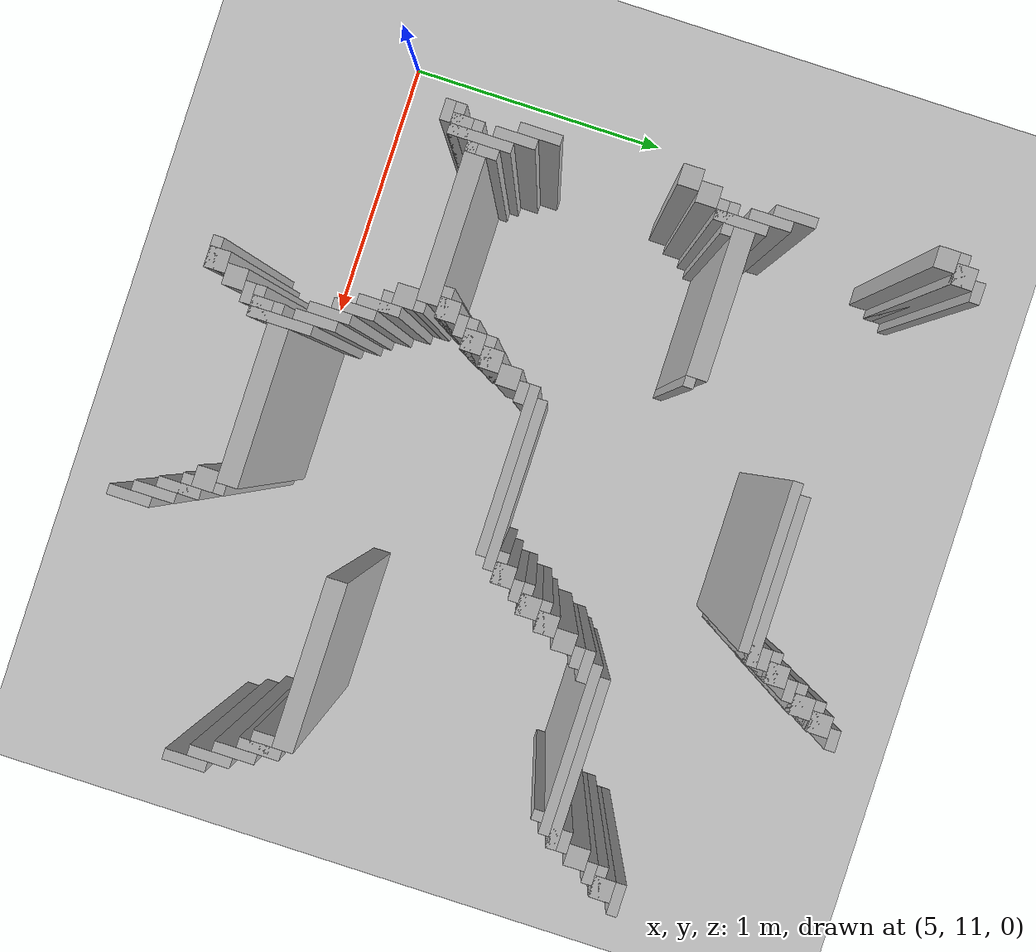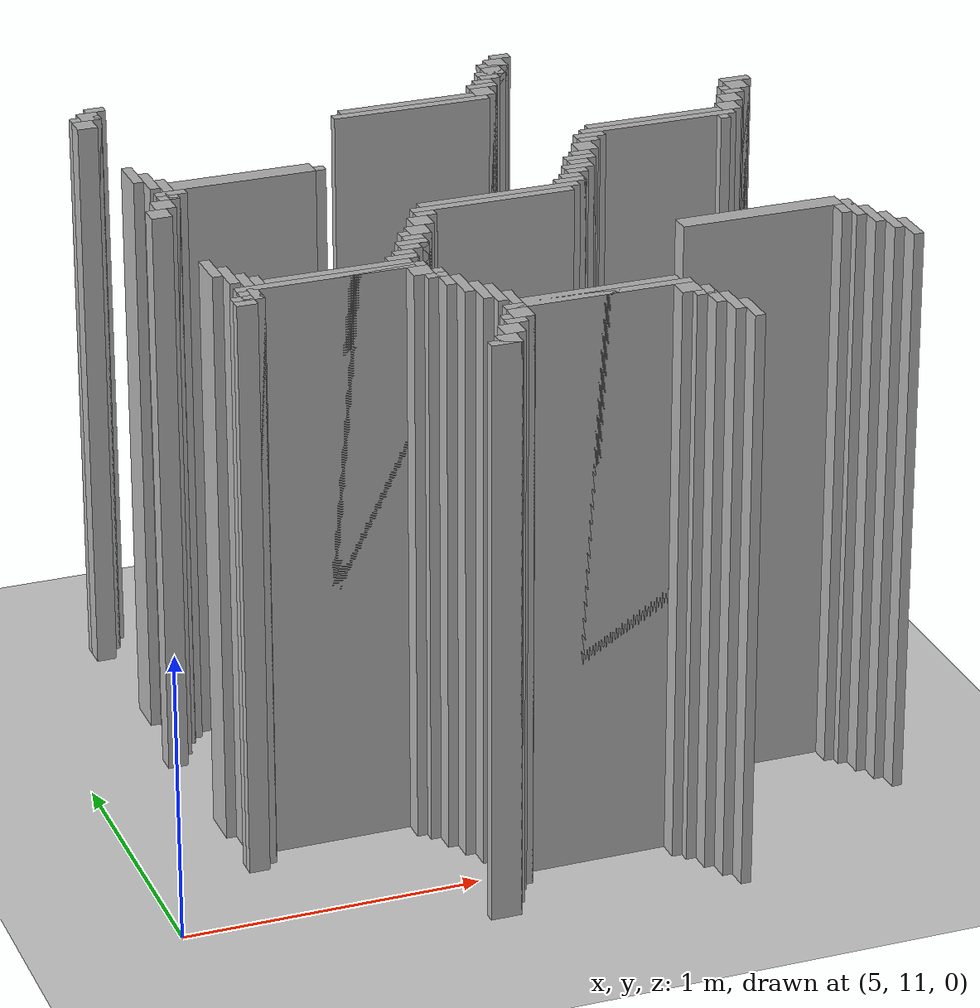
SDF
<sdf version="1.6">
 <world name="slam_world">
  <model name="ground_plane">
   <static>true</static>
   <link name="link">
    <collision name="collision">
     <geometry><plane><normal>0 0 1</normal><size>100 100</size></plane></geometry>
    </collision>
    <visual name="visual">
     <geometry><plane><normal>0 0 1</normal><size>100 100</size></plane></geometry>
     <material>
      <ambient>0.8 0.8 0.8 1</ambient>
      <diffuse>0.8 0.8 0.8 1</diffuse>
      <specular>0.8 0.8 0.8 1</specular>
     </material>
    </visual>
   </link>
  </model>
  <model name="wall_1390">
   <static>true</static>
   <pose>5.3944315545243615 13.06844547563805 1.0 0 0 0</pose>
   <link name="link">
    <collision name="collision">
     <geometry><box><size>0.06960556844547564 0.03480278422273782 2.0</size></box></geometry>
    </collision>
    <visual name="visual">
     <geometry><box><size>0.06960556844547564 0.03480278422273782 2.0</size></box></geometry>
     <material><ambient>0.5 0.5 0.5 1</ambient><diffuse>0.7 0.7 0.7 1</diffuse></material>
    </visual>
   </link>
  </model>
  <model name="wall_1391">
   <static>true</static>
   <pose>6.85614849187935 13.06844547563805 1.0 0 0 0</pose>
   <link name="link">
    <collision name="collision">
     <geometry><box><size>0.06960556844547564 0.03480278422273782 2.0</size></box></geometry>
    </collision>
    <visual name="visual">
     <geometry><box><size>0.06960556844547564 0.03480278422273782 2.0</size></box></geometry>
     <material><ambient>0.5 0.5 0.5 1</ambient><diffuse>0.7 0.7 0.7 1</diffuse></material>
    </visual>
   </link>
  </model>
  <model name="wall_1403">
   <static>true</static>
   <pose>5.359628770301624 13.016241299303944 1.0 0 0 0</pose>
   <link name="link">
    <collision name="collision">
     <geometry><box><size>0.06960556844547564 0.06960556844547564 2.0</size></box></geometry>
    </collision>
    <visual name="visual">
     <geometry><box><size>0.06960556844547564 0.06960556844547564 2.0</size></box></geometry>
     <material><ambient>0.5 0.5 0.5 1</ambient><diffuse>0.7 0.7 0.7 1</diffuse></material>
    </visual>
   </link>
  </model>
  <model name="wall_1404">
   <static>true</static>
   <pose>6.821345707656612 13.016241299303944 1.0 0 0 0</pose>
   <link name="link">
    <collision name="collision">
     <geometry><box><size>0.06960556844547564 0.06960556844547564 2.0</size></box></geometry>
    </collision>
    <visual name="visual">
     <geometry><box><size>0.06960556844547564 0.06960556844547564 2.0</size></box></geometry>
     <material><ambient>0.5 0.5 0.5 1</ambient><diffuse>0.7 0.7 0.7 1</diffuse></material>
    </visual>
   </link>
  </model>
  <model name="wall_1418">
   <static>true</static>
   <pose>5.342227378190255 12.998839907192576 1.0 0 0 0</pose>
   <link name="link">
    <collision name="collision">
     <geometry><box><size>0.10440835266821345 0.03480278422273782 2.0</size></box></geometry>
    </collision>
    <visual name="visual">
     <geometry><box><size>0.10440835266821345 0.03480278422273782 2.0</size></box></geometry>
     <material><ambient>0.5 0.5 0.5 1</ambient><diffuse>0.7 0.7 0.7 1</diffuse></material>
    </visual>
   </link>
  </model>
  <model name="wall_1419">
   <static>true</static>
   <pose>6.803944315545244 12.998839907192576 1.0 0 0 0</pose>
   <link name="link">
    <collision name="collision">
     <geometry><box><size>0.10440835266821345 0.03480278422273782 2.0</size></box></geometry>
    </collision>
    <visual name="visual">
     <geometry><box><size>0.10440835266821345 0.03480278422273782 2.0</size></box></geometry>
     <material><ambient>0.5 0.5 0.5 1</ambient><diffuse>0.7 0.7 0.7 1</diffuse></material>
    </visual>
   </link>
  </model>
  <model name="wall_1433">
   <static>true</static>
   <pose>5.324825986078886 12.946635730858468 1.0 0 0 0</pose>
   <link name="link">
    <collision name="collision">
     <geometry><box><size>0.06960556844547564 0.06960556844547564 2.0</size></box></geometry>
    </collision>
    <visual name="visual">
     <geometry><box><size>0.06960556844547564 0.06960556844547564 2.0</size></box></geometry>
     <material><ambient>0.5 0.5 0.5 1</ambient><diffuse>0.7 0.7 0.7 1</diffuse></material>
    </visual>
   </link>
  </model>
  <model name="wall_1434">
   <static>true</static>
   <pose>6.786542923433874 12.946635730858468 1.0 0 0 0</pose>
   <link name="link">
    <collision name="collision">
     <geometry><box><size>0.06960556844547564 0.06960556844547564 2.0</size></box></geometry>
    </collision>
    <visual name="visual">
     <geometry><box><size>0.06960556844547564 0.06960556844547564 2.0</size></box></geometry>
     <material><ambient>0.5 0.5 0.5 1</ambient><diffuse>0.7 0.7 0.7 1</diffuse></material>
    </visual>
   </link>
  </model>
  <model name="wall_1449">
   <static>true</static>
   <pose>6.769141531322505 12.929234338747099 1.0 0 0 0</pose>
   <link name="link">
    <collision name="collision">
     <geometry><box><size>0.10440835266821345 0.03480278422273782 2.0</size></box></geometry>
    </collision>
    <visual name="visual">
     <geometry><box><size>0.10440835266821345 0.03480278422273782 2.0</size></box></geometry>
     <material><ambient>0.5 0.5 0.5 1</ambient><diffuse>0.7 0.7 0.7 1</diffuse></material>
    </visual>
   </link>
  </model>
  <model name="wall_1462">
   <static>true</static>
   <pose>6.751740139211137 12.894431554524362 1.0 0 0 0</pose>
   <link name="link">
    <collision name="collision">
     <geometry><box><size>0.06960556844547564 0.03480278422273782 2.0</size></box></geometry>
    </collision>
    <visual name="visual">
     <geometry><box><size>0.06960556844547564 0.03480278422273782 2.0</size></box></geometry>
     <material><ambient>0.5 0.5 0.5 1</ambient><diffuse>0.7 0.7 0.7 1</diffuse></material>
    </visual>
   </link>
  </model>
  <model name="wall_1472">
   <static>true</static>
   <pose>6.716937354988398 12.842227378190255 1.0 0 0 0</pose>
   <link name="link">
    <collision name="collision">
     <geometry><box><size>0.06960556844547564 0.06960556844547564 2.0</size></box></geometry>
    </collision>
    <visual name="visual">
     <geometry><box><size>0.06960556844547564 0.06960556844547564 2.0</size></box></geometry>
     <material><ambient>0.5 0.5 0.5 1</ambient><diffuse>0.7 0.7 0.7 1</diffuse></material>
    </visual>
   </link>
  </model>
  <model name="wall_1487">
   <static>true</static>
   <pose>6.69953596287703 12.824825986078885 1.0 0 0 0</pose>
   <link name="link">
    <collision name="collision">
     <geometry><box><size>0.10440835266821345 0.03480278422273782 2.0</size></box></geometry>
    </collision>
    <visual name="visual">
     <geometry><box><size>0.10440835266821345 0.03480278422273782 2.0</size></box></geometry>
     <material><ambient>0.5 0.5 0.5 1</ambient><diffuse>0.7 0.7 0.7 1</diffuse></material>
    </visual>
   </link>
  </model>
  <model name="wall_1500">
   <static>true</static>
   <pose>6.682134570765661 12.772621809744779 1.0 0 0 0</pose>
   <link name="link">
    <collision name="collision">
     <geometry><box><size>0.06960556844547564 0.06960556844547564 2.0</size></box></geometry>
    </collision>
    <visual name="visual">
     <geometry><box><size>0.06960556844547564 0.06960556844547564 2.0</size></box></geometry>
     <material><ambient>0.5 0.5 0.5 1</ambient><diffuse>0.7 0.7 0.7 1</diffuse></material>
    </visual>
   </link>
  </model>
  <model name="wall_1511">
   <static>true</static>
   <pose>6.438515081206496 12.75522041763341 1.0 0 0 0</pose>
   <link name="link">
    <collision name="collision">
     <geometry><box><size>0.5568445475638051 0.03480278422273782 2.0</size></box></geometry>
    </collision>
    <visual name="visual">
     <geometry><box><size>0.5568445475638051 0.03480278422273782 2.0</size></box></geometry>
     <material><ambient>0.5 0.5 0.5 1</ambient><diffuse>0.7 0.7 0.7 1</diffuse></material>
    </visual>
   </link>
  </model>
  <model name="wall_1524">
   <static>true</static>
   <pose>6.403712296983758 12.720417633410673 1.0 0 0 0</pose>
   <link name="link">
    <collision name="collision">
     <geometry><box><size>0.5568445475638051 0.03480278422273782 2.0</size></box></geometry>
    </collision>
    <visual name="visual">
     <geometry><box><size>0.5568445475638051 0.03480278422273782 2.0</size></box></geometry>
     <material><ambient>0.5 0.5 0.5 1</ambient><diffuse>0.7 0.7 0.7 1</diffuse></material>
    </visual>
   </link>
  </model>
  <model name="wall_1574">
   <static>true</static>
   <pose>7.534802784222737 12.581206496519721 1.0 0 0 0</pose>
   <link name="link">
    <collision name="collision">
     <geometry><box><size>0.10440835266821345 0.03480278422273782 2.0</size></box></geometry>
    </collision>
    <visual name="visual">
     <geometry><box><size>0.10440835266821345 0.03480278422273782 2.0</size></box></geometry>
     <material><ambient>0.5 0.5 0.5 1</ambient><diffuse>0.7 0.7 0.7 1</diffuse></material>
    </visual>
   </link>
  </model>
  <model name="wall_1586">
   <static>true</static>
   <pose>7.517401392111369 12.529002320185615 1.0 0 0 0</pose>
   <link name="link">
    <collision name="collision">
     <geometry><box><size>0.06960556844547564 0.06960556844547564 2.0</size></box></geometry>
    </collision>
    <visual name="visual">
     <geometry><box><size>0.06960556844547564 0.06960556844547564 2.0</size></box></geometry>
     <material><ambient>0.5 0.5 0.5 1</ambient><diffuse>0.7 0.7 0.7 1</diffuse></material>
    </visual>
   </link>
  </model>
  <model name="wall_1597">
   <static>true</static>
   <pose>5.342227378190255 12.459396751740138 1.0 0 0 0</pose>
   <link name="link">
    <collision name="collision">
     <geometry><box><size>0.03480278422273782 0.13921113689095127 2.0</size></box></geometry>
    </collision>
    <visual name="visual">
     <geometry><box><size>0.03480278422273782 0.13921113689095127 2.0</size></box></geometry>
     <material><ambient>0.5 0.5 0.5 1</ambient><diffuse>0.7 0.7 0.7 1</diffuse></material>
    </visual>
   </link>
  </model>
  <model name="wall_1598">
   <static>true</static>
   <pose>7.5 12.511600928074245 1.0 0 0 0</pose>
   <link name="link">
    <collision name="collision">
     <geometry><box><size>0.10440835266821345 0.03480278422273782 2.0</size></box></geometry>
    </collision>
    <visual name="visual">
     <geometry><box><size>0.10440835266821345 0.03480278422273782 2.0</size></box></geometry>
     <material><ambient>0.5 0.5 0.5 1</ambient><diffuse>0.7 0.7 0.7 1</diffuse></material>
    </visual>
   </link>
  </model>
  <model name="wall_1608">
   <static>true</static>
   <pose>7.48259860788863 12.476798143851507 1.0 0 0 0</pose>
   <link name="link">
    <collision name="collision">
     <geometry><box><size>0.06960556844547564 0.03480278422273782 2.0</size></box></geometry>
    </collision>
    <visual name="visual">
     <geometry><box><size>0.06960556844547564 0.03480278422273782 2.0</size></box></geometry>
     <material><ambient>0.5 0.5 0.5 1</ambient><diffuse>0.7 0.7 0.7 1</diffuse></material>
    </visual>
   </link>
  </model>
  <model name="wall_1617">
   <static>true</static>
   <pose>5.377030162412993 12.389791183294664 1.0 0 0 0</pose>
   <link name="link">
    <collision name="collision">
     <geometry><box><size>0.03480278422273782 0.13921113689095127 2.0</size></box></geometry>
    </collision>
    <visual name="visual">
     <geometry><box><size>0.03480278422273782 0.13921113689095127 2.0</size></box></geometry>
     <material><ambient>0.5 0.5 0.5 1</ambient><diffuse>0.7 0.7 0.7 1</diffuse></material>
    </visual>
   </link>
  </model>
  <model name="wall_1618">
   <static>true</static>
   <pose>7.447795823665893 12.424593967517401 1.0 0 0 0</pose>
   <link name="link">
    <collision name="collision">
     <geometry><box><size>0.06960556844547564 0.06960556844547564 2.0</size></box></geometry>
    </collision>
    <visual name="visual">
     <geometry><box><size>0.06960556844547564 0.06960556844547564 2.0</size></box></geometry>
     <material><ambient>0.5 0.5 0.5 1</ambient><diffuse>0.7 0.7 0.7 1</diffuse></material>
    </visual>
   </link>
  </model>
  <model name="wall_1630">
   <static>true</static>
   <pose>5.41183294663573 12.302784222737818 1.0 0 0 0</pose>
   <link name="link">
    <collision name="collision">
     <geometry><box><size>0.03480278422273782 0.17401392111368907 2.0</size></box></geometry>
    </collision>
    <visual name="visual">
     <geometry><box><size>0.03480278422273782 0.17401392111368907 2.0</size></box></geometry>
     <material><ambient>0.5 0.5 0.5 1</ambient><diffuse>0.7 0.7 0.7 1</diffuse></material>
    </visual>
   </link>
  </model>
  <model name="wall_1631">
   <static>true</static>
   <pose>7.412993039443156 12.354988399071924 1.0 0 0 0</pose>
   <link name="link">
    <collision name="collision">
     <geometry><box><size>0.06960556844547564 0.06960556844547564 2.0</size></box></geometry>
    </collision>
    <visual name="visual">
     <geometry><box><size>0.06960556844547564 0.06960556844547564 2.0</size></box></geometry>
     <material><ambient>0.5 0.5 0.5 1</ambient><diffuse>0.7 0.7 0.7 1</diffuse></material>
    </visual>
   </link>
  </model>
  <model name="wall_1643">
   <static>true</static>
   <pose>5.672853828306264 12.320185614849187 1.0 0 0 0</pose>
   <link name="link">
    <collision name="collision">
     <geometry><box><size>0.4872389791183295 0.06960556844547564 2.0</size></box></geometry>
    </collision>
    <visual name="visual">
     <geometry><box><size>0.4872389791183295 0.06960556844547564 2.0</size></box></geometry>
     <material><ambient>0.5 0.5 0.5 1</ambient><diffuse>0.7 0.7 0.7 1</diffuse></material>
    </visual>
   </link>
  </model>
  <model name="wall_1644">
   <static>true</static>
   <pose>7.16937354988399 12.337587006960556 1.0 0 0 0</pose>
   <link name="link">
    <collision name="collision">
     <geometry><box><size>0.5568445475638051 0.03480278422273782 2.0</size></box></geometry>
    </collision>
    <visual name="visual">
     <geometry><box><size>0.5568445475638051 0.03480278422273782 2.0</size></box></geometry>
     <material><ambient>0.5 0.5 0.5 1</ambient><diffuse>0.7 0.7 0.7 1</diffuse></material>
    </visual>
   </link>
  </model>
  <model name="wall_1654">
   <static>true</static>
   <pose>5.933874709976798 12.302784222737818 1.0 0 0 0</pose>
   <link name="link">
    <collision name="collision">
     <geometry><box><size>0.03480278422273782 0.03480278422273782 2.0</size></box></geometry>
    </collision>
    <visual name="visual">
     <geometry><box><size>0.03480278422273782 0.03480278422273782 2.0</size></box></geometry>
     <material><ambient>0.5 0.5 0.5 1</ambient><diffuse>0.7 0.7 0.7 1</diffuse></material>
    </visual>
   </link>
  </model>
  <model name="wall_1655">
   <static>true</static>
   <pose>7.134570765661253 12.302784222737818 1.0 0 0 0</pose>
   <link name="link">
    <collision name="collision">
     <geometry><box><size>0.5568445475638051 0.03480278422273782 2.0</size></box></geometry>
    </collision>
    <visual name="visual">
     <geometry><box><size>0.5568445475638051 0.03480278422273782 2.0</size></box></geometry>
     <material><ambient>0.5 0.5 0.5 1</ambient><diffuse>0.7 0.7 0.7 1</diffuse></material>
    </visual>
   </link>
  </model>
  <model name="wall_1668">
   <static>true</static>
   <pose>5.41183294663573 12.267981438515081 1.0 0 0 0</pose>
   <link name="link">
    <collision name="collision">
     <geometry><box><size>0.10440835266821345 0.03480278422273782 2.0</size></box></geometry>
    </collision>
    <visual name="visual">
     <geometry><box><size>0.10440835266821345 0.03480278422273782 2.0</size></box></geometry>
     <material><ambient>0.5 0.5 0.5 1</ambient><diffuse>0.7 0.7 0.7 1</diffuse></material>
    </visual>
   </link>
  </model>
  <model name="wall_1669">
   <static>true</static>
   <pose>6.8735498839907185 12.267981438515081 1.0 0 0 0</pose>
   <link name="link">
    <collision name="collision">
     <geometry><box><size>0.10440835266821345 0.03480278422273782 2.0</size></box></geometry>
    </collision>
    <visual name="visual">
     <geometry><box><size>0.10440835266821345 0.03480278422273782 2.0</size></box></geometry>
     <material><ambient>0.5 0.5 0.5 1</ambient><diffuse>0.7 0.7 0.7 1</diffuse></material>
    </visual>
   </link>
  </model>
  <model name="wall_1670">
   <static>true</static>
   <pose>7.360788863109049 12.267981438515081 1.0 0 0 0</pose>
   <link name="link">
    <collision name="collision">
     <geometry><box><size>0.03480278422273782 0.03480278422273782 2.0</size></box></geometry>
    </collision>
    <visual name="visual">
     <geometry><box><size>0.03480278422273782 0.03480278422273782 2.0</size></box></geometry>
     <material><ambient>0.5 0.5 0.5 1</ambient><diffuse>0.7 0.7 0.7 1</diffuse></material>
    </visual>
   </link>
  </model>
  <model name="wall_1685">
   <static>true</static>
   <pose>5.3944315545243615 12.233178654292344 1.0 0 0 0</pose>
   <link name="link">
    <collision name="collision">
     <geometry><box><size>0.06960556844547564 0.03480278422273782 2.0</size></box></geometry>
    </collision>
    <visual name="visual">
     <geometry><box><size>0.06960556844547564 0.03480278422273782 2.0</size></box></geometry>
     <material><ambient>0.5 0.5 0.5 1</ambient><diffuse>0.7 0.7 0.7 1</diffuse></material>
    </visual>
   </link>
  </model>
  <model name="wall_1686">
   <static>true</static>
   <pose>6.85614849187935 12.233178654292344 1.0 0 0 0</pose>
   <link name="link">
    <collision name="collision">
     <geometry><box><size>0.06960556844547564 0.03480278422273782 2.0</size></box></geometry>
    </collision>
    <visual name="visual">
     <geometry><box><size>0.06960556844547564 0.03480278422273782 2.0</size></box></geometry>
     <material><ambient>0.5 0.5 0.5 1</ambient><diffuse>0.7 0.7 0.7 1</diffuse></material>
    </visual>
   </link>
  </model>
  <model name="wall_1699">
   <static>true</static>
   <pose>5.359628770301624 12.180974477958236 1.0 0 0 0</pose>
   <link name="link">
    <collision name="collision">
     <geometry><box><size>0.06960556844547564 0.06960556844547564 2.0</size></box></geometry>
    </collision>
    <visual name="visual">
     <geometry><box><size>0.06960556844547564 0.06960556844547564 2.0</size></box></geometry>
     <material><ambient>0.5 0.5 0.5 1</ambient><diffuse>0.7 0.7 0.7 1</diffuse></material>
    </visual>
   </link>
  </model>
  <model name="wall_1700">
   <static>true</static>
   <pose>6.821345707656612 12.180974477958236 1.0 0 0 0</pose>
   <link name="link">
    <collision name="collision">
     <geometry><box><size>0.06960556844547564 0.06960556844547564 2.0</size></box></geometry>
    </collision>
    <visual name="visual">
     <geometry><box><size>0.06960556844547564 0.06960556844547564 2.0</size></box></geometry>
     <material><ambient>0.5 0.5 0.5 1</ambient><diffuse>0.7 0.7 0.7 1</diffuse></material>
    </visual>
   </link>
  </model>
  <model name="wall_1713">
   <static>true</static>
   <pose>5.324825986078886 12.11136890951276 1.0 0 0 0</pose>
   <link name="link">
    <collision name="collision">
     <geometry><box><size>0.06960556844547564 0.06960556844547564 2.0</size></box></geometry>
    </collision>
    <visual name="visual">
     <geometry><box><size>0.06960556844547564 0.06960556844547564 2.0</size></box></geometry>
     <material><ambient>0.5 0.5 0.5 1</ambient><diffuse>0.7 0.7 0.7 1</diffuse></material>
    </visual>
   </link>
  </model>
  <model name="wall_1714">
   <static>true</static>
   <pose>6.786542923433874 12.11136890951276 1.0 0 0 0</pose>
   <link name="link">
    <collision name="collision">
     <geometry><box><size>0.06960556844547564 0.06960556844547564 2.0</size></box></geometry>
    </collision>
    <visual name="visual">
     <geometry><box><size>0.06960556844547564 0.06960556844547564 2.0</size></box></geometry>
     <material><ambient>0.5 0.5 0.5 1</ambient><diffuse>0.7 0.7 0.7 1</diffuse></material>
    </visual>
   </link>
  </model>
  <model name="wall_1728">
   <static>true</static>
   <pose>6.769141531322505 12.093967517401392 1.0 0 0 0</pose>
   <link name="link">
    <collision name="collision">
     <geometry><box><size>0.10440835266821345 0.03480278422273782 2.0</size></box></geometry>
    </collision>
    <visual name="visual">
     <geometry><box><size>0.10440835266821345 0.03480278422273782 2.0</size></box></geometry>
     <material><ambient>0.5 0.5 0.5 1</ambient><diffuse>0.7 0.7 0.7 1</diffuse></material>
    </visual>
   </link>
  </model>
  <model name="wall_1741">
   <static>true</static>
   <pose>6.751740139211137 12.041763341067284 1.0 0 0 0</pose>
   <link name="link">
    <collision name="collision">
     <geometry><box><size>0.06960556844547564 0.06960556844547564 2.0</size></box></geometry>
    </collision>
    <visual name="visual">
     <geometry><box><size>0.06960556844547564 0.06960556844547564 2.0</size></box></geometry>
     <material><ambient>0.5 0.5 0.5 1</ambient><diffuse>0.7 0.7 0.7 1</diffuse></material>
    </visual>
   </link>
  </model>
  <model name="wall_1752">
   <static>true</static>
   <pose>6.734338747099768 12.024361948955915 1.0 0 0 0</pose>
   <link name="link">
    <collision name="collision">
     <geometry><box><size>0.10440835266821345 0.03480278422273782 2.0</size></box></geometry>
    </collision>
    <visual name="visual">
     <geometry><box><size>0.10440835266821345 0.03480278422273782 2.0</size></box></geometry>
     <material><ambient>0.5 0.5 0.5 1</ambient><diffuse>0.7 0.7 0.7 1</diffuse></material>
    </visual>
   </link>
  </model>
  <model name="wall_1764">
   <static>true</static>
   <pose>6.716937354988398 11.989559164733178 1.0 0 0 0</pose>
   <link name="link">
    <collision name="collision">
     <geometry><box><size>0.06960556844547564 0.03480278422273782 2.0</size></box></geometry>
    </collision>
    <visual name="visual">
     <geometry><box><size>0.06960556844547564 0.03480278422273782 2.0</size></box></geometry>
     <material><ambient>0.5 0.5 0.5 1</ambient><diffuse>0.7 0.7 0.7 1</diffuse></material>
    </visual>
   </link>
  </model>
  <model name="wall_1774">
   <static>true</static>
   <pose>6.682134570765661 11.937354988399072 1.0 0 0 0</pose>
   <link name="link">
    <collision name="collision">
     <geometry><box><size>0.06960556844547564 0.06960556844547564 2.0</size></box></geometry>
    </collision>
    <visual name="visual">
     <geometry><box><size>0.06960556844547564 0.06960556844547564 2.0</size></box></geometry>
     <material><ambient>0.5 0.5 0.5 1</ambient><diffuse>0.7 0.7 0.7 1</diffuse></material>
    </visual>
   </link>
  </model>
  <model name="wall_1788">
   <static>true</static>
   <pose>6.664733178654292 11.919953596287703 1.0 0 0 0</pose>
   <link name="link">
    <collision name="collision">
     <geometry><box><size>0.10440835266821345 0.03480278422273782 2.0</size></box></geometry>
    </collision>
    <visual name="visual">
     <geometry><box><size>0.10440835266821345 0.03480278422273782 2.0</size></box></geometry>
     <material><ambient>0.5 0.5 0.5 1</ambient><diffuse>0.7 0.7 0.7 1</diffuse></material>
    </visual>
   </link>
  </model>
  <model name="wall_1802">
   <static>true</static>
   <pose>6.403712296983758 11.885150812064964 1.0 0 0 0</pose>
   <link name="link">
    <collision name="collision">
     <geometry><box><size>0.5568445475638051 0.03480278422273782 2.0</size></box></geometry>
    </collision>
    <visual name="visual">
     <geometry><box><size>0.5568445475638051 0.03480278422273782 2.0</size></box></geometry>
     <material><ambient>0.5 0.5 0.5 1</ambient><diffuse>0.7 0.7 0.7 1</diffuse></material>
    </visual>
   </link>
  </model>
  <model name="wall_1814">
   <static>true</static>
   <pose>6.368909512761021 11.850348027842227 1.0 0 0 0</pose>
   <link name="link">
    <collision name="collision">
     <geometry><box><size>0.5568445475638051 0.03480278422273782 2.0</size></box></geometry>
    </collision>
    <visual name="visual">
     <geometry><box><size>0.5568445475638051 0.03480278422273782 2.0</size></box></geometry>
     <material><ambient>0.5 0.5 0.5 1</ambient><diffuse>0.7 0.7 0.7 1</diffuse></material>
    </visual>
   </link>
  </model>
  <model name="wall_1827">
   <static>true</static>
   <pose>6.125290023201856 11.81554524361949 1.0 0 0 0</pose>
   <link name="link">
    <collision name="collision">
     <geometry><box><size>0.06960556844547564 0.03480278422273782 2.0</size></box></geometry>
    </collision>
    <visual name="visual">
     <geometry><box><size>0.06960556844547564 0.03480278422273782 2.0</size></box></geometry>
     <material><ambient>0.5 0.5 0.5 1</ambient><diffuse>0.7 0.7 0.7 1</diffuse></material>
    </visual>
   </link>
  </model>
  <model name="wall_1841">
   <static>true</static>
   <pose>6.090487238979118 11.763341067285383 1.0 0 0 0</pose>
   <link name="link">
    <collision name="collision">
     <geometry><box><size>0.06960556844547564 0.06960556844547564 2.0</size></box></geometry>
    </collision>
    <visual name="visual">
     <geometry><box><size>0.06960556844547564 0.06960556844547564 2.0</size></box></geometry>
     <material><ambient>0.5 0.5 0.5 1</ambient><diffuse>0.7 0.7 0.7 1</diffuse></material>
    </visual>
   </link>
  </model>
  <model name="wall_1855">
   <static>true</static>
   <pose>6.05568445475638 11.693735498839906 1.0 0 0 0</pose>
   <link name="link">
    <collision name="collision">
     <geometry><box><size>0.06960556844547564 0.06960556844547564 2.0</size></box></geometry>
    </collision>
    <visual name="visual">
     <geometry><box><size>0.06960556844547564 0.06960556844547564 2.0</size></box></geometry>
     <material><ambient>0.5 0.5 0.5 1</ambient><diffuse>0.7 0.7 0.7 1</diffuse></material>
    </visual>
   </link>
  </model>
  <model name="wall_1868">
   <static>true</static>
   <pose>5.342227378190255 11.624129930394432 1.0 0 0 0</pose>
   <link name="link">
    <collision name="collision">
     <geometry><box><size>0.03480278422273782 0.13921113689095127 2.0</size></box></geometry>
    </collision>
    <visual name="visual">
     <geometry><box><size>0.03480278422273782 0.13921113689095127 2.0</size></box></geometry>
     <material><ambient>0.5 0.5 0.5 1</ambient><diffuse>0.7 0.7 0.7 1</diffuse></material>
    </visual>
   </link>
  </model>
  <model name="wall_1869">
   <static>true</static>
   <pose>6.038283062645012 11.676334106728538 1.0 0 0 0</pose>
   <link name="link">
    <collision name="collision">
     <geometry><box><size>0.10440835266821345 0.03480278422273782 2.0</size></box></geometry>
    </collision>
    <visual name="visual">
     <geometry><box><size>0.10440835266821345 0.03480278422273782 2.0</size></box></geometry>
     <material><ambient>0.5 0.5 0.5 1</ambient><diffuse>0.7 0.7 0.7 1</diffuse></material>
    </visual>
   </link>
  </model>
  <model name="wall_1880">
   <static>true</static>
   <pose>6.020881670533642 11.624129930394432 1.0 0 0 0</pose>
   <link name="link">
    <collision name="collision">
     <geometry><box><size>0.06960556844547564 0.06960556844547564 2.0</size></box></geometry>
    </collision>
    <visual name="visual">
     <geometry><box><size>0.06960556844547564 0.06960556844547564 2.0</size></box></geometry>
     <material><ambient>0.5 0.5 0.5 1</ambient><diffuse>0.7 0.7 0.7 1</diffuse></material>
    </visual>
   </link>
  </model>
  <model name="wall_1891">
   <static>true</static>
   <pose>5.377030162412993 11.554524361948955 1.0 0 0 0</pose>
   <link name="link">
    <collision name="collision">
     <geometry><box><size>0.03480278422273782 0.13921113689095127 2.0</size></box></geometry>
    </collision>
    <visual name="visual">
     <geometry><box><size>0.03480278422273782 0.13921113689095127 2.0</size></box></geometry>
     <material><ambient>0.5 0.5 0.5 1</ambient><diffuse>0.7 0.7 0.7 1</diffuse></material>
    </visual>
   </link>
  </model>
  <model name="wall_1892">
   <static>true</static>
   <pose>6.003480278422273 11.606728538283063 1.0 0 0 0</pose>
   <link name="link">
    <collision name="collision">
     <geometry><box><size>0.10440835266821345 0.03480278422273782 2.0</size></box></geometry>
    </collision>
    <visual name="visual">
     <geometry><box><size>0.10440835266821345 0.03480278422273782 2.0</size></box></geometry>
     <material><ambient>0.5 0.5 0.5 1</ambient><diffuse>0.7 0.7 0.7 1</diffuse></material>
    </visual>
   </link>
  </model>
  <model name="wall_1902">
   <static>true</static>
   <pose>5.986078886310905 11.571925754060324 1.0 0 0 0</pose>
   <link name="link">
    <collision name="collision">
     <geometry><box><size>0.06960556844547564 0.03480278422273782 2.0</size></box></geometry>
    </collision>
    <visual name="visual">
     <geometry><box><size>0.06960556844547564 0.03480278422273782 2.0</size></box></geometry>
     <material><ambient>0.5 0.5 0.5 1</ambient><diffuse>0.7 0.7 0.7 1</diffuse></material>
    </visual>
   </link>
  </model>
  <model name="wall_1911">
   <static>true</static>
   <pose>5.41183294663573 11.450116009280743 1.0 0 0 0</pose>
   <link name="link">
    <collision name="collision">
     <geometry><box><size>0.03480278422273782 0.2088167053364269 2.0</size></box></geometry>
    </collision>
    <visual name="visual">
     <geometry><box><size>0.03480278422273782 0.2088167053364269 2.0</size></box></geometry>
     <material><ambient>0.5 0.5 0.5 1</ambient><diffuse>0.7 0.7 0.7 1</diffuse></material>
    </visual>
   </link>
  </model>
  <model name="wall_1912">
   <static>true</static>
   <pose>5.951276102088166 11.519721577726218 1.0 0 0 0</pose>
   <link name="link">
    <collision name="collision">
     <geometry><box><size>0.06960556844547564 0.06960556844547564 2.0</size></box></geometry>
    </collision>
    <visual name="visual">
     <geometry><box><size>0.06960556844547564 0.06960556844547564 2.0</size></box></geometry>
     <material><ambient>0.5 0.5 0.5 1</ambient><diffuse>0.7 0.7 0.7 1</diffuse></material>
    </visual>
   </link>
  </model>
  <model name="wall_1924">
   <static>true</static>
   <pose>5.4466357308584685 11.467517401392112 1.0 0 0 0</pose>
   <link name="link">
    <collision name="collision">
     <geometry><box><size>0.03480278422273782 0.10440835266821345 2.0</size></box></geometry>
    </collision>
    <visual name="visual">
     <geometry><box><size>0.03480278422273782 0.10440835266821345 2.0</size></box></geometry>
     <material><ambient>0.5 0.5 0.5 1</ambient><diffuse>0.7 0.7 0.7 1</diffuse></material>
    </visual>
   </link>
  </model>
  <model name="wall_1925">
   <static>true</static>
   <pose>5.933874709976798 11.502320185614849 1.0 0 0 0</pose>
   <link name="link">
    <collision name="collision">
     <geometry><box><size>0.10440835266821345 0.03480278422273782 2.0</size></box></geometry>
    </collision>
    <visual name="visual">
     <geometry><box><size>0.10440835266821345 0.03480278422273782 2.0</size></box></geometry>
     <material><ambient>0.5 0.5 0.5 1</ambient><diffuse>0.7 0.7 0.7 1</diffuse></material>
    </visual>
   </link>
  </model>
  <model name="wall_1937">
   <static>true</static>
   <pose>5.707656612529002 11.450116009280743 1.0 0 0 0</pose>
   <link name="link">
    <collision name="collision">
     <geometry><box><size>0.4872389791183295 0.06960556844547564 2.0</size></box></geometry>
    </collision>
    <visual name="visual">
     <geometry><box><size>0.4872389791183295 0.06960556844547564 2.0</size></box></geometry>
     <material><ambient>0.5 0.5 0.5 1</ambient><diffuse>0.7 0.7 0.7 1</diffuse></material>
    </visual>
   </link>
  </model>
  <model name="wall_1938">
   <static>true</static>
   <pose>7.134570765661253 11.450116009280743 1.0 0 0 0</pose>
   <link name="link">
    <collision name="collision">
     <geometry><box><size>0.5568445475638051 0.06960556844547564 2.0</size></box></geometry>
    </collision>
    <visual name="visual">
     <geometry><box><size>0.5568445475638051 0.06960556844547564 2.0</size></box></geometry>
     <material><ambient>0.5 0.5 0.5 1</ambient><diffuse>0.7 0.7 0.7 1</diffuse></material>
    </visual>
   </link>
  </model>
  <model name="wall_1949">
   <static>true</static>
   <pose>5.672853828306264 11.432714617169372 1.0 0 0 0</pose>
   <link name="link">
    <collision name="collision">
     <geometry><box><size>0.6264501160092807 0.03480278422273782 2.0</size></box></geometry>
    </collision>
    <visual name="visual">
     <geometry><box><size>0.6264501160092807 0.03480278422273782 2.0</size></box></geometry>
     <material><ambient>0.5 0.5 0.5 1</ambient><diffuse>0.7 0.7 0.7 1</diffuse></material>
    </visual>
   </link>
  </model>
  <model name="wall_1950">
   <static>true</static>
   <pose>7.430394431554524 11.380510440835266 1.0 0 0 0</pose>
   <link name="link">
    <collision name="collision">
     <geometry><box><size>0.03480278422273782 0.13921113689095127 2.0</size></box></geometry>
    </collision>
    <visual name="visual">
     <geometry><box><size>0.03480278422273782 0.13921113689095127 2.0</size></box></geometry>
     <material><ambient>0.5 0.5 0.5 1</ambient><diffuse>0.7 0.7 0.7 1</diffuse></material>
    </visual>
   </link>
  </model>
  <model name="wall_1964">
   <static>true</static>
   <pose>5.3944315545243615 11.380510440835266 1.0 0 0 0</pose>
   <link name="link">
    <collision name="collision">
     <geometry><box><size>0.06960556844547564 0.06960556844547564 2.0</size></box></geometry>
    </collision>
    <visual name="visual">
     <geometry><box><size>0.06960556844547564 0.06960556844547564 2.0</size></box></geometry>
     <material><ambient>0.5 0.5 0.5 1</ambient><diffuse>0.7 0.7 0.7 1</diffuse></material>
    </visual>
   </link>
  </model>
  <model name="wall_1965">
   <static>true</static>
   <pose>5.951276102088166 11.380510440835266 1.0 0 0 0</pose>
   <link name="link">
    <collision name="collision">
     <geometry><box><size>0.06960556844547564 0.06960556844547564 2.0</size></box></geometry>
    </collision>
    <visual name="visual">
     <geometry><box><size>0.06960556844547564 0.06960556844547564 2.0</size></box></geometry>
     <material><ambient>0.5 0.5 0.5 1</ambient><diffuse>0.7 0.7 0.7 1</diffuse></material>
    </visual>
   </link>
  </model>
  <model name="wall_1966">
   <static>true</static>
   <pose>7.412993039443156 11.380510440835266 1.0 0 0 0</pose>
   <link name="link">
    <collision name="collision">
     <geometry><box><size>0.06960556844547564 0.06960556844547564 2.0</size></box></geometry>
    </collision>
    <visual name="visual">
     <geometry><box><size>0.06960556844547564 0.06960556844547564 2.0</size></box></geometry>
     <material><ambient>0.5 0.5 0.5 1</ambient><diffuse>0.7 0.7 0.7 1</diffuse></material>
    </visual>
   </link>
  </model>
  <model name="wall_1981">
   <static>true</static>
   <pose>5.377030162412993 11.363109048723897 1.0 0 0 0</pose>
   <link name="link">
    <collision name="collision">
     <geometry><box><size>0.10440835266821345 0.03480278422273782 2.0</size></box></geometry>
    </collision>
    <visual name="visual">
     <geometry><box><size>0.10440835266821345 0.03480278422273782 2.0</size></box></geometry>
     <material><ambient>0.5 0.5 0.5 1</ambient><diffuse>0.7 0.7 0.7 1</diffuse></material>
    </visual>
   </link>
  </model>
  <model name="wall_1982">
   <static>true</static>
   <pose>6.003480278422273 11.310904872389791 1.0 0 0 0</pose>
   <link name="link">
    <collision name="collision">
     <geometry><box><size>0.03480278422273782 0.13921113689095127 2.0</size></box></geometry>
    </collision>
    <visual name="visual">
     <geometry><box><size>0.03480278422273782 0.13921113689095127 2.0</size></box></geometry>
     <material><ambient>0.5 0.5 0.5 1</ambient><diffuse>0.7 0.7 0.7 1</diffuse></material>
    </visual>
   </link>
  </model>
  <model name="wall_1983">
   <static>true</static>
   <pose>7.465197215777262 11.310904872389791 1.0 0 0 0</pose>
   <link name="link">
    <collision name="collision">
     <geometry><box><size>0.03480278422273782 0.13921113689095127 2.0</size></box></geometry>
    </collision>
    <visual name="visual">
     <geometry><box><size>0.03480278422273782 0.13921113689095127 2.0</size></box></geometry>
     <material><ambient>0.5 0.5 0.5 1</ambient><diffuse>0.7 0.7 0.7 1</diffuse></material>
    </visual>
   </link>
  </model>
  <model name="wall_1996">
   <static>true</static>
   <pose>5.359628770301624 11.32830626450116 1.0 0 0 0</pose>
   <link name="link">
    <collision name="collision">
     <geometry><box><size>0.06960556844547564 0.03480278422273782 2.0</size></box></geometry>
    </collision>
    <visual name="visual">
     <geometry><box><size>0.06960556844547564 0.03480278422273782 2.0</size></box></geometry>
     <material><ambient>0.5 0.5 0.5 1</ambient><diffuse>0.7 0.7 0.7 1</diffuse></material>
    </visual>
   </link>
  </model>
  <model name="wall_1997">
   <static>true</static>
   <pose>5.986078886310905 11.32830626450116 1.0 0 0 0</pose>
   <link name="link">
    <collision name="collision">
     <geometry><box><size>0.06960556844547564 0.03480278422273782 2.0</size></box></geometry>
    </collision>
    <visual name="visual">
     <geometry><box><size>0.06960556844547564 0.03480278422273782 2.0</size></box></geometry>
     <material><ambient>0.5 0.5 0.5 1</ambient><diffuse>0.7 0.7 0.7 1</diffuse></material>
    </visual>
   </link>
  </model>
  <model name="wall_2011">
   <static>true</static>
   <pose>6.038283062645012 11.241299303944315 1.0 0 0 0</pose>
   <link name="link">
    <collision name="collision">
     <geometry><box><size>0.03480278422273782 0.13921113689095127 2.0</size></box></geometry>
    </collision>
    <visual name="visual">
     <geometry><box><size>0.03480278422273782 0.13921113689095127 2.0</size></box></geometry>
     <material><ambient>0.5 0.5 0.5 1</ambient><diffuse>0.7 0.7 0.7 1</diffuse></material>
    </visual>
   </link>
  </model>
  <model name="wall_2012">
   <static>true</static>
   <pose>7.5 11.241299303944315 1.0 0 0 0</pose>
   <link name="link">
    <collision name="collision">
     <geometry><box><size>0.03480278422273782 0.13921113689095127 2.0</size></box></geometry>
    </collision>
    <visual name="visual">
     <geometry><box><size>0.03480278422273782 0.13921113689095127 2.0</size></box></geometry>
     <material><ambient>0.5 0.5 0.5 1</ambient><diffuse>0.7 0.7 0.7 1</diffuse></material>
    </visual>
   </link>
  </model>
  <model name="wall_2028">
   <static>true</static>
   <pose>6.073085846867749 11.17169373549884 1.0 0 0 0</pose>
   <link name="link">
    <collision name="collision">
     <geometry><box><size>0.03480278422273782 0.13921113689095127 2.0</size></box></geometry>
    </collision>
    <visual name="visual">
     <geometry><box><size>0.03480278422273782 0.13921113689095127 2.0</size></box></geometry>
     <material><ambient>0.5 0.5 0.5 1</ambient><diffuse>0.7 0.7 0.7 1</diffuse></material>
    </visual>
   </link>
  </model>
  <model name="wall_2029">
   <static>true</static>
   <pose>7.534802784222737 11.17169373549884 1.0 0 0 0</pose>
   <link name="link">
    <collision name="collision">
     <geometry><box><size>0.03480278422273782 0.13921113689095127 2.0</size></box></geometry>
    </collision>
    <visual name="visual">
     <geometry><box><size>0.03480278422273782 0.13921113689095127 2.0</size></box></geometry>
     <material><ambient>0.5 0.5 0.5 1</ambient><diffuse>0.7 0.7 0.7 1</diffuse></material>
    </visual>
   </link>
  </model>
  <model name="wall_2045">
   <static>true</static>
   <pose>6.107888631090487 11.1368909512761 1.0 0 0 0</pose>
   <link name="link">
    <collision name="collision">
     <geometry><box><size>0.03480278422273782 0.13921113689095127 2.0</size></box></geometry>
    </collision>
    <visual name="visual">
     <geometry><box><size>0.03480278422273782 0.13921113689095127 2.0</size></box></geometry>
     <material><ambient>0.5 0.5 0.5 1</ambient><diffuse>0.7 0.7 0.7 1</diffuse></material>
    </visual>
   </link>
  </model>
  <model name="wall_2071">
   <static>true</static>
   <pose>6.142691415313225 11.032482598607888 1.0 0 0 0</pose>
   <link name="link">
    <collision name="collision">
     <geometry><box><size>0.03480278422273782 0.2088167053364269 2.0</size></box></geometry>
    </collision>
    <visual name="visual">
     <geometry><box><size>0.03480278422273782 0.2088167053364269 2.0</size></box></geometry>
     <material><ambient>0.5 0.5 0.5 1</ambient><diffuse>0.7 0.7 0.7 1</diffuse></material>
    </visual>
   </link>
  </model>
  <model name="wall_2095">
   <static>true</static>
   <pose>6.421113689095128 11.032482598607888 1.0 0 0 0</pose>
   <link name="link">
    <collision name="collision">
     <geometry><box><size>0.5220417633410672 0.06960556844547564 2.0</size></box></geometry>
    </collision>
    <visual name="visual">
     <geometry><box><size>0.5220417633410672 0.06960556844547564 2.0</size></box></geometry>
     <material><ambient>0.5 0.5 0.5 1</ambient><diffuse>0.7 0.7 0.7 1</diffuse></material>
    </visual>
   </link>
  </model>
  <model name="wall_2107">
   <static>true</static>
   <pose>6.403712296983758 11.01508120649652 1.0 0 0 0</pose>
   <link name="link">
    <collision name="collision">
     <geometry><box><size>0.6264501160092807 0.03480278422273782 2.0</size></box></geometry>
    </collision>
    <visual name="visual">
     <geometry><box><size>0.6264501160092807 0.03480278422273782 2.0</size></box></geometry>
     <material><ambient>0.5 0.5 0.5 1</ambient><diffuse>0.7 0.7 0.7 1</diffuse></material>
    </visual>
   </link>
  </model>
  <model name="wall_2118">
   <static>true</static>
   <pose>6.125290023201856 10.962877030162412 1.0 0 0 0</pose>
   <link name="link">
    <collision name="collision">
     <geometry><box><size>0.06960556844547564 0.06960556844547564 2.0</size></box></geometry>
    </collision>
    <visual name="visual">
     <geometry><box><size>0.06960556844547564 0.06960556844547564 2.0</size></box></geometry>
     <material><ambient>0.5 0.5 0.5 1</ambient><diffuse>0.7 0.7 0.7 1</diffuse></material>
    </visual>
   </link>
  </model>
  <model name="wall_2119">
   <static>true</static>
   <pose>6.682134570765661 10.962877030162412 1.0 0 0 0</pose>
   <link name="link">
    <collision name="collision">
     <geometry><box><size>0.06960556844547564 0.06960556844547564 2.0</size></box></geometry>
    </collision>
    <visual name="visual">
     <geometry><box><size>0.06960556844547564 0.06960556844547564 2.0</size></box></geometry>
     <material><ambient>0.5 0.5 0.5 1</ambient><diffuse>0.7 0.7 0.7 1</diffuse></material>
    </visual>
   </link>
  </model>
  <model name="wall_2131">
   <static>true</static>
   <pose>6.107888631090487 10.945475638051043 1.0 0 0 0</pose>
   <link name="link">
    <collision name="collision">
     <geometry><box><size>0.10440835266821345 0.03480278422273782 2.0</size></box></geometry>
    </collision>
    <visual name="visual">
     <geometry><box><size>0.10440835266821345 0.03480278422273782 2.0</size></box></geometry>
     <material><ambient>0.5 0.5 0.5 1</ambient><diffuse>0.7 0.7 0.7 1</diffuse></material>
    </visual>
   </link>
  </model>
  <model name="wall_2132">
   <static>true</static>
   <pose>6.734338747099768 10.893271461716937 1.0 0 0 0</pose>
   <link name="link">
    <collision name="collision">
     <geometry><box><size>0.03480278422273782 0.13921113689095127 2.0</size></box></geometry>
    </collision>
    <visual name="visual">
     <geometry><box><size>0.03480278422273782 0.13921113689095127 2.0</size></box></geometry>
     <material><ambient>0.5 0.5 0.5 1</ambient><diffuse>0.7 0.7 0.7 1</diffuse></material>
    </visual>
   </link>
  </model>
  <model name="wall_2143">
   <static>true</static>
   <pose>6.090487238979118 10.910672853828306 1.0 0 0 0</pose>
   <link name="link">
    <collision name="collision">
     <geometry><box><size>0.06960556844547564 0.03480278422273782 2.0</size></box></geometry>
    </collision>
    <visual name="visual">
     <geometry><box><size>0.06960556844547564 0.03480278422273782 2.0</size></box></geometry>
     <material><ambient>0.5 0.5 0.5 1</ambient><diffuse>0.7 0.7 0.7 1</diffuse></material>
    </visual>
   </link>
  </model>
  <model name="wall_2144">
   <static>true</static>
   <pose>6.716937354988398 10.910672853828306 1.0 0 0 0</pose>
   <link name="link">
    <collision name="collision">
     <geometry><box><size>0.06960556844547564 0.03480278422273782 2.0</size></box></geometry>
    </collision>
    <visual name="visual">
     <geometry><box><size>0.06960556844547564 0.03480278422273782 2.0</size></box></geometry>
     <material><ambient>0.5 0.5 0.5 1</ambient><diffuse>0.7 0.7 0.7 1</diffuse></material>
    </visual>
   </link>
  </model>
  <model name="wall_2154">
   <static>true</static>
   <pose>6.05568445475638 10.8584686774942 1.0 0 0 0</pose>
   <link name="link">
    <collision name="collision">
     <geometry><box><size>0.06960556844547564 0.06960556844547564 2.0</size></box></geometry>
    </collision>
    <visual name="visual">
     <geometry><box><size>0.06960556844547564 0.06960556844547564 2.0</size></box></geometry>
     <material><ambient>0.5 0.5 0.5 1</ambient><diffuse>0.7 0.7 0.7 1</diffuse></material>
    </visual>
   </link>
  </model>
  <model name="wall_2155">
   <static>true</static>
   <pose>6.769141531322505 10.82366589327146 1.0 0 0 0</pose>
   <link name="link">
    <collision name="collision">
     <geometry><box><size>0.03480278422273782 0.13921113689095127 2.0</size></box></geometry>
    </collision>
    <visual name="visual">
     <geometry><box><size>0.03480278422273782 0.13921113689095127 2.0</size></box></geometry>
     <material><ambient>0.5 0.5 0.5 1</ambient><diffuse>0.7 0.7 0.7 1</diffuse></material>
    </visual>
   </link>
  </model>
  <model name="wall_2167">
   <static>true</static>
   <pose>6.020881670533642 10.788863109048723 1.0 0 0 0</pose>
   <link name="link">
    <collision name="collision">
     <geometry><box><size>0.06960556844547564 0.06960556844547564 2.0</size></box></geometry>
    </collision>
    <visual name="visual">
     <geometry><box><size>0.06960556844547564 0.06960556844547564 2.0</size></box></geometry>
     <material><ambient>0.5 0.5 0.5 1</ambient><diffuse>0.7 0.7 0.7 1</diffuse></material>
    </visual>
   </link>
  </model>
  <model name="wall_2168">
   <static>true</static>
   <pose>6.803944315545244 10.754060324825986 1.0 0 0 0</pose>
   <link name="link">
    <collision name="collision">
     <geometry><box><size>0.03480278422273782 0.13921113689095127 2.0</size></box></geometry>
    </collision>
    <visual name="visual">
     <geometry><box><size>0.03480278422273782 0.13921113689095127 2.0</size></box></geometry>
     <material><ambient>0.5 0.5 0.5 1</ambient><diffuse>0.7 0.7 0.7 1</diffuse></material>
    </visual>
   </link>
  </model>
  <model name="wall_2180">
   <static>true</static>
   <pose>6.003480278422273 10.771461716937354 1.0 0 0 0</pose>
   <link name="link">
    <collision name="collision">
     <geometry><box><size>0.10440835266821345 0.03480278422273782 2.0</size></box></geometry>
    </collision>
    <visual name="visual">
     <geometry><box><size>0.10440835266821345 0.03480278422273782 2.0</size></box></geometry>
     <material><ambient>0.5 0.5 0.5 1</ambient><diffuse>0.7 0.7 0.7 1</diffuse></material>
    </visual>
   </link>
  </model>
 </world>
</sdf>
